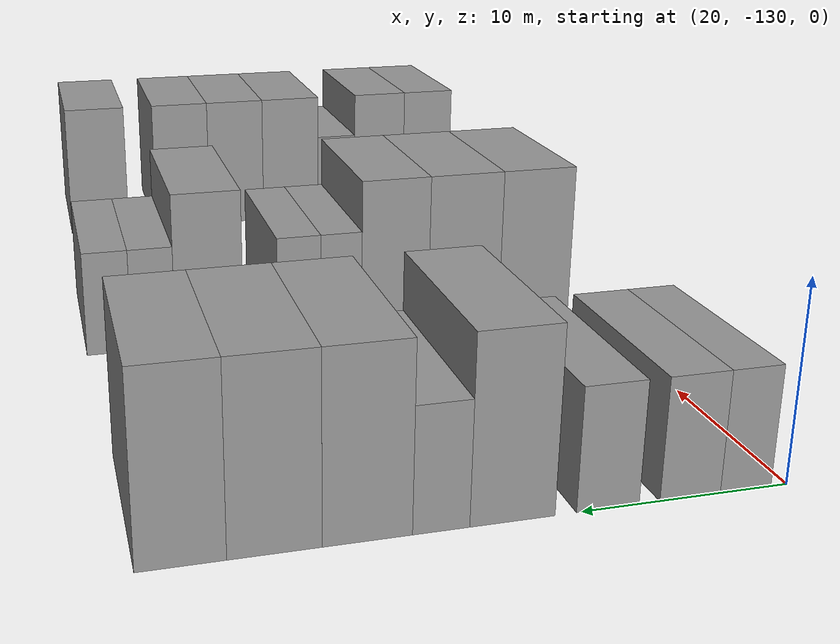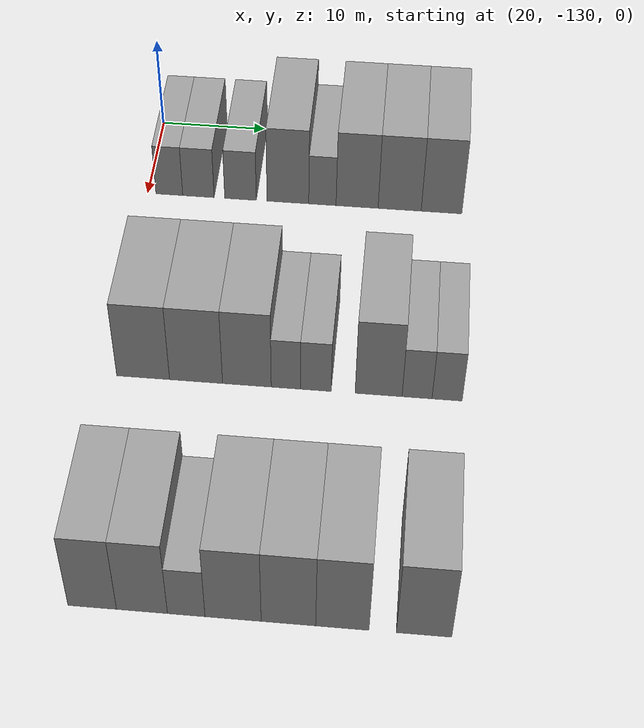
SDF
<sdf version="1.6">
 <world name="default">
  <model name="building_30">
   <static>1</static>
   <pose>25.0000 -127.9489 0 0.000000 0.000000 0.000000</pose>
   <link name="link">
    <pose>0 0 3.00 0 0 0</pose>
    <collision name="collision"><geometry><box><size>10.0000 2.5270 6.0000</size></box></geometry></collision>
    <visual name="visual">
     <cast_shadows>0</cast_shadows>
     <geometry><box><size>10.0000 2.5270 6.0000</size></box></geometry>
     <material>
      <script>
       <uri>model://grey_wall/materials/scripts</uri>
       <uri>model://grey_wall/materials/textures</uri>
       <name>vrc/grey_wall</name>
      </script>
     </material>
    </visual>
   </link>
  </model>
  <model name="building_31">
   <static>1</static>
   <pose>25.0000 -125.2089 0 0.000000 0.000000 0.000000</pose>
   <link name="link">
    <pose>0 0 3.00 0 0 0</pose>
    <collision name="collision"><geometry><box><size>10.0000 2.9530 6.0000</size></box></geometry></collision>
    <visual name="visual">
     <cast_shadows>0</cast_shadows>
     <geometry><box><size>10.0000 2.9530 6.0000</size></box></geometry>
     <material>
      <script>
       <uri>model://grey_wall/materials/scripts</uri>
       <uri>model://grey_wall/materials/textures</uri>
       <name>vrc/grey_wall</name>
      </script>
     </material>
    </visual>
   </link>
  </model>
  <model name="building_32">
   <static>1</static>
   <pose>25.0000 -121.2491 0 0.000000 0.000000 0.000000</pose>
   <link name="link">
    <pose>0 0 3.00 0 0 0</pose>
    <collision name="collision"><geometry><box><size>10.0000 2.9667 6.0000</size></box></geometry></collision>
    <visual name="visual">
     <cast_shadows>0</cast_shadows>
     <geometry><box><size>10.0000 2.9667 6.0000</size></box></geometry>
     <material>
      <script>
       <uri>model://grey_wall/materials/scripts</uri>
       <uri>model://grey_wall/materials/textures</uri>
       <name>vrc/grey_wall</name>
      </script>
     </material>
    </visual>
   </link>
  </model>
  <model name="building_33">
   <static>1</static>
   <pose>25.0000 -116.8174 0 0.000000 0.000000 0.000000</pose>
   <link name="link">
    <pose>0 0 4.50 0 0 0</pose>
    <collision name="collision"><geometry><box><size>10.0000 3.8967 9.0000</size></box></geometry></collision>
    <visual name="visual">
     <cast_shadows>0</cast_shadows>
     <geometry><box><size>10.0000 3.8967 9.0000</size></box></geometry>
     <material>
      <script>
       <uri>model://grey_wall/materials/scripts</uri>
       <uri>model://grey_wall/materials/textures</uri>
       <name>vrc/grey_wall</name>
      </script>
     </material>
    </visual>
   </link>
  </model>
  <model name="building_34">
   <static>1</static>
   <pose>25.0000 -113.5964 0 0.000000 0.000000 0.000000</pose>
   <link name="link">
    <pose>0 0 3.00 0 0 0</pose>
    <collision name="collision"><geometry><box><size>10.0000 2.5452 6.0000</size></box></geometry></collision>
    <visual name="visual">
     <cast_shadows>0</cast_shadows>
     <geometry><box><size>10.0000 2.5452 6.0000</size></box></geometry>
     <material>
      <script>
       <uri>model://grey_wall/materials/scripts</uri>
       <uri>model://grey_wall/materials/textures</uri>
       <name>vrc/grey_wall</name>
      </script>
     </material>
    </visual>
   </link>
  </model>
  <model name="building_35">
   <static>1</static>
   <pose>25.0000 -110.3677 0 0.000000 0.000000 0.000000</pose>
   <link name="link">
    <pose>0 0 4.50 0 0 0</pose>
    <collision name="collision"><geometry><box><size>10.0000 3.9122 9.0000</size></box></geometry></collision>
    <visual name="visual">
     <cast_shadows>0</cast_shadows>
     <geometry><box><size>10.0000 3.9122 9.0000</size></box></geometry>
     <material>
      <script>
       <uri>model://grey_wall/materials/scripts</uri>
       <uri>model://grey_wall/materials/textures</uri>
       <name>vrc/grey_wall</name>
      </script>
     </material>
    </visual>
   </link>
  </model>
  <model name="building_36">
   <static>1</static>
   <pose>25.0000 -106.4191 0 0.000000 0.000000 0.000000</pose>
   <link name="link">
    <pose>0 0 4.50 0 0 0</pose>
    <collision name="collision"><geometry><box><size>10.0000 3.9849 9.0000</size></box></geometry></collision>
    <visual name="visual">
     <cast_shadows>0</cast_shadows>
     <geometry><box><size>10.0000 3.9849 9.0000</size></box></geometry>
     <material>
      <script>
       <uri>model://grey_wall/materials/scripts</uri>
       <uri>model://grey_wall/materials/textures</uri>
       <name>vrc/grey_wall</name>
      </script>
     </material>
    </visual>
   </link>
  </model>
  <model name="building_37">
   <static>1</static>
   <pose>25.0000 -102.5497 0 0.000000 0.000000 0.000000</pose>
   <link name="link">
    <pose>0 0 4.50 0 0 0</pose>
    <collision name="collision"><geometry><box><size>10.0000 3.7540 9.0000</size></box></geometry></collision>
    <visual name="visual">
     <cast_shadows>0</cast_shadows>
     <geometry><box><size>10.0000 3.7540 9.0000</size></box></geometry>
     <material>
      <script>
       <uri>model://grey_wall/materials/scripts</uri>
       <uri>model://grey_wall/materials/textures</uri>
       <name>vrc/grey_wall</name>
      </script>
     </material>
    </visual>
   </link>
  </model>
  <model name="building_156">
   <static>1</static>
   <pose>47.0000 -126.8989 0 0.000000 0.000000 0.000000</pose>
   <link name="link">
    <pose>0 0 4.50 0 0 0</pose>
    <collision name="collision"><geometry><box><size>10.0000 4.4736 9.0000</size></box></geometry></collision>
    <visual name="visual">
     <cast_shadows>0</cast_shadows>
     <geometry><box><size>10.0000 4.4736 9.0000</size></box></geometry>
     <material>
      <script>
       <uri>model://grey_wall/materials/scripts</uri>
       <uri>model://grey_wall/materials/textures</uri>
       <name>vrc/grey_wall</name>
      </script>
     </material>
    </visual>
   </link>
  </model>
  <model name="building_157">
   <static>1</static>
   <pose>47.0000 -122.4296 0 0.000000 0.000000 0.000000</pose>
   <link name="link">
    <pose>0 0 4.50 0 0 0</pose>
    <collision name="collision"><geometry><box><size>10.0000 4.4650 9.0000</size></box></geometry></collision>
    <visual name="visual">
     <cast_shadows>0</cast_shadows>
     <geometry><box><size>10.0000 4.4650 9.0000</size></box></geometry>
     <material>
      <script>
       <uri>model://grey_wall/materials/scripts</uri>
       <uri>model://grey_wall/materials/textures</uri>
       <name>vrc/grey_wall</name>
      </script>
     </material>
    </visual>
   </link>
  </model>
  <model name="building_158">
   <static>1</static>
   <pose>47.0000 -118.1539 0 0.000000 0.000000 0.000000</pose>
   <link name="link">
    <pose>0 0 4.50 0 0 0</pose>
    <collision name="collision"><geometry><box><size>10.0000 4.0863 9.0000</size></box></geometry></collision>
    <visual name="visual">
     <cast_shadows>0</cast_shadows>
     <geometry><box><size>10.0000 4.0863 9.0000</size></box></geometry>
     <material>
      <script>
       <uri>model://grey_wall/materials/scripts</uri>
       <uri>model://grey_wall/materials/textures</uri>
       <name>vrc/grey_wall</name>
      </script>
     </material>
    </visual>
   </link>
  </model>
  <model name="building_159">
   <static>1</static>
   <pose>47.0000 -114.8946 0 0.000000 0.000000 0.000000</pose>
   <link name="link">
    <pose>0 0 3.00 0 0 0</pose>
    <collision name="collision"><geometry><box><size>10.0000 2.4323 6.0000</size></box></geometry></collision>
    <visual name="visual">
     <cast_shadows>0</cast_shadows>
     <geometry><box><size>10.0000 2.4323 6.0000</size></box></geometry>
     <material>
      <script>
       <uri>model://grey_wall/materials/scripts</uri>
       <uri>model://grey_wall/materials/textures</uri>
       <name>vrc/grey_wall</name>
      </script>
     </material>
    </visual>
   </link>
  </model>
  <model name="building_160">
   <static>1</static>
   <pose>47.0000 -112.3926 0 0.000000 0.000000 0.000000</pose>
   <link name="link">
    <pose>0 0 3.00 0 0 0</pose>
    <collision name="collision"><geometry><box><size>10.0000 2.5717 6.0000</size></box></geometry></collision>
    <visual name="visual">
     <cast_shadows>0</cast_shadows>
     <geometry><box><size>10.0000 2.5717 6.0000</size></box></geometry>
     <material>
      <script>
       <uri>model://grey_wall/materials/scripts</uri>
       <uri>model://grey_wall/materials/textures</uri>
       <name>vrc/grey_wall</name>
      </script>
     </material>
    </visual>
   </link>
  </model>
  <model name="building_161">
   <static>1</static>
   <pose>47.0000 -107.1591 0 0.000000 0.000000 0.000000</pose>
   <link name="link">
    <pose>0 0 4.50 0 0 0</pose>
    <collision name="collision"><geometry><box><size>10.0000 3.8954 9.0000</size></box></geometry></collision>
    <visual name="visual">
     <cast_shadows>0</cast_shadows>
     <geometry><box><size>10.0000 3.8954 9.0000</size></box></geometry>
     <material>
      <script>
       <uri>model://grey_wall/materials/scripts</uri>
       <uri>model://grey_wall/materials/textures</uri>
       <name>vrc/grey_wall</name>
      </script>
     </material>
    </visual>
   </link>
  </model>
  <model name="building_162">
   <static>1</static>
   <pose>47.0000 -103.9714 0 0.000000 0.000000 0.000000</pose>
   <link name="link">
    <pose>0 0 3.00 0 0 0</pose>
    <collision name="collision"><geometry><box><size>10.0000 2.4798 6.0000</size></box></geometry></collision>
    <visual name="visual">
     <cast_shadows>0</cast_shadows>
     <geometry><box><size>10.0000 2.4798 6.0000</size></box></geometry>
     <material>
      <script>
       <uri>model://grey_wall/materials/scripts</uri>
       <uri>model://grey_wall/materials/textures</uri>
       <name>vrc/grey_wall</name>
      </script>
     </material>
    </visual>
   </link>
  </model>
  <model name="building_163">
   <static>1</static>
   <pose>47.0000 -101.4872 0 0.000000 0.000000 0.000000</pose>
   <link name="link">
    <pose>0 0 3.00 0 0 0</pose>
    <collision name="collision"><geometry><box><size>10.0000 2.4887 6.0000</size></box></geometry></collision>
    <visual name="visual">
     <cast_shadows>0</cast_shadows>
     <geometry><box><size>10.0000 2.4887 6.0000</size></box></geometry>
     <material>
      <script>
       <uri>model://grey_wall/materials/scripts</uri>
       <uri>model://grey_wall/materials/textures</uri>
       <name>vrc/grey_wall</name>
      </script>
     </material>
    </visual>
   </link>
  </model>
  <model name="building_276">
   <static>1</static>
   <pose>69.0000 -127.1787 0 0.000000 0.000000 0.000000</pose>
   <link name="link">
    <pose>0 0 4.50 0 0 0</pose>
    <collision name="collision"><geometry><box><size>10.0000 3.6448 9.0000</size></box></geometry></collision>
    <visual name="visual">
     <cast_shadows>0</cast_shadows>
     <geometry><box><size>10.0000 3.6448 9.0000</size></box></geometry>
     <material>
      <script>
       <uri>model://grey_wall/materials/scripts</uri>
       <uri>model://grey_wall/materials/textures</uri>
       <name>vrc/grey_wall</name>
      </script>
     </material>
    </visual>
   </link>
  </model>
  <model name="building_277">
   <static>1</static>
   <pose>69.0000 -123.4548 0 0.000000 0.000000 0.000000</pose>
   <link name="link">
    <pose>0 0 4.50 0 0 0</pose>
    <collision name="collision"><geometry><box><size>10.0000 3.8029 9.0000</size></box></geometry></collision>
    <visual name="visual">
     <cast_shadows>0</cast_shadows>
     <geometry><box><size>10.0000 3.8029 9.0000</size></box></geometry>
     <material>
      <script>
       <uri>model://grey_wall/materials/scripts</uri>
       <uri>model://grey_wall/materials/textures</uri>
       <name>vrc/grey_wall</name>
      </script>
     </material>
    </visual>
   </link>
  </model>
  <model name="building_278">
   <static>1</static>
   <pose>69.0000 -120.1540 0 0.000000 0.000000 0.000000</pose>
   <link name="link">
    <pose>0 0 3.00 0 0 0</pose>
    <collision name="collision"><geometry><box><size>10.0000 2.7988 6.0000</size></box></geometry></collision>
    <visual name="visual">
     <cast_shadows>0</cast_shadows>
     <geometry><box><size>10.0000 2.7988 6.0000</size></box></geometry>
     <material>
      <script>
       <uri>model://grey_wall/materials/scripts</uri>
       <uri>model://grey_wall/materials/textures</uri>
       <name>vrc/grey_wall</name>
      </script>
     </material>
    </visual>
   </link>
  </model>
  <model name="building_279">
   <static>1</static>
   <pose>69.0000 -116.6730 0 0.000000 0.000000 0.000000</pose>
   <link name="link">
    <pose>0 0 4.50 0 0 0</pose>
    <collision name="collision"><geometry><box><size>10.0000 4.1632 9.0000</size></box></geometry></collision>
    <visual name="visual">
     <cast_shadows>0</cast_shadows>
     <geometry><box><size>10.0000 4.1632 9.0000</size></box></geometry>
     <material>
      <script>
       <uri>model://grey_wall/materials/scripts</uri>
       <uri>model://grey_wall/materials/textures</uri>
       <name>vrc/grey_wall</name>
      </script>
     </material>
    </visual>
   </link>
  </model>
  <model name="building_280">
   <static>1</static>
   <pose>69.0000 -112.5796 0 0.000000 0.000000 0.000000</pose>
   <link name="link">
    <pose>0 0 4.50 0 0 0</pose>
    <collision name="collision"><geometry><box><size>10.0000 4.0235 9.0000</size></box></geometry></collision>
    <visual name="visual">
     <cast_shadows>0</cast_shadows>
     <geometry><box><size>10.0000 4.0235 9.0000</size></box></geometry>
     <material>
      <script>
       <uri>model://grey_wall/materials/scripts</uri>
       <uri>model://grey_wall/materials/textures</uri>
       <name>vrc/grey_wall</name>
      </script>
     </material>
    </visual>
   </link>
  </model>
  <model name="building_281">
   <static>1</static>
   <pose>69.0000 -108.6081 0 0.000000 0.000000 0.000000</pose>
   <link name="link">
    <pose>0 0 4.50 0 0 0</pose>
    <collision name="collision"><geometry><box><size>10.0000 3.9196 9.0000</size></box></geometry></collision>
    <visual name="visual">
     <cast_shadows>0</cast_shadows>
     <geometry><box><size>10.0000 3.9196 9.0000</size></box></geometry>
     <material>
      <script>
       <uri>model://grey_wall/materials/scripts</uri>
       <uri>model://grey_wall/materials/textures</uri>
       <name>vrc/grey_wall</name>
      </script>
     </material>
    </visual>
   </link>
  </model>
  <model name="building_282">
   <static>1</static>
   <pose>69.0000 -102.6232 0 0.000000 0.000000 0.000000</pose>
   <link name="link">
    <pose>0 0 4.50 0 0 0</pose>
    <collision name="collision"><geometry><box><size>10.0000 4.0502 9.0000</size></box></geometry></collision>
    <visual name="visual">
     <cast_shadows>0</cast_shadows>
     <geometry><box><size>10.0000 4.0502 9.0000</size></box></geometry>
     <material>
      <script>
       <uri>model://grey_wall/materials/scripts</uri>
       <uri>model://grey_wall/materials/textures</uri>
       <name>vrc/grey_wall</name>
      </script>
     </material>
    </visual>
   </link>
  </model>
 </world>
</sdf>
